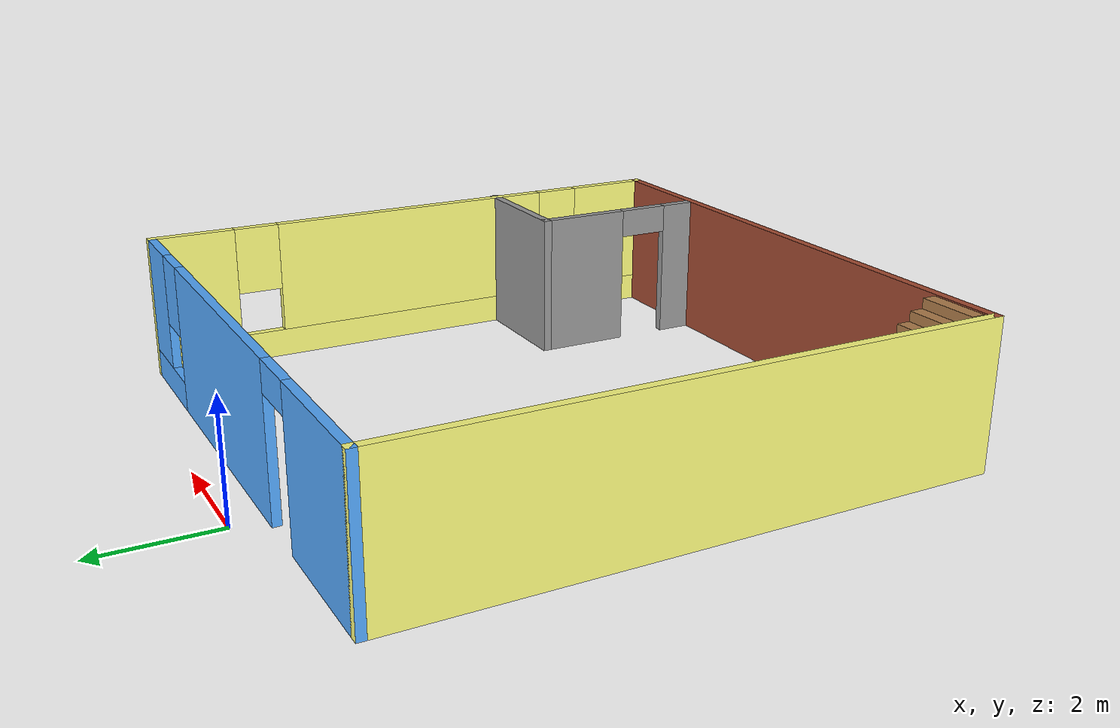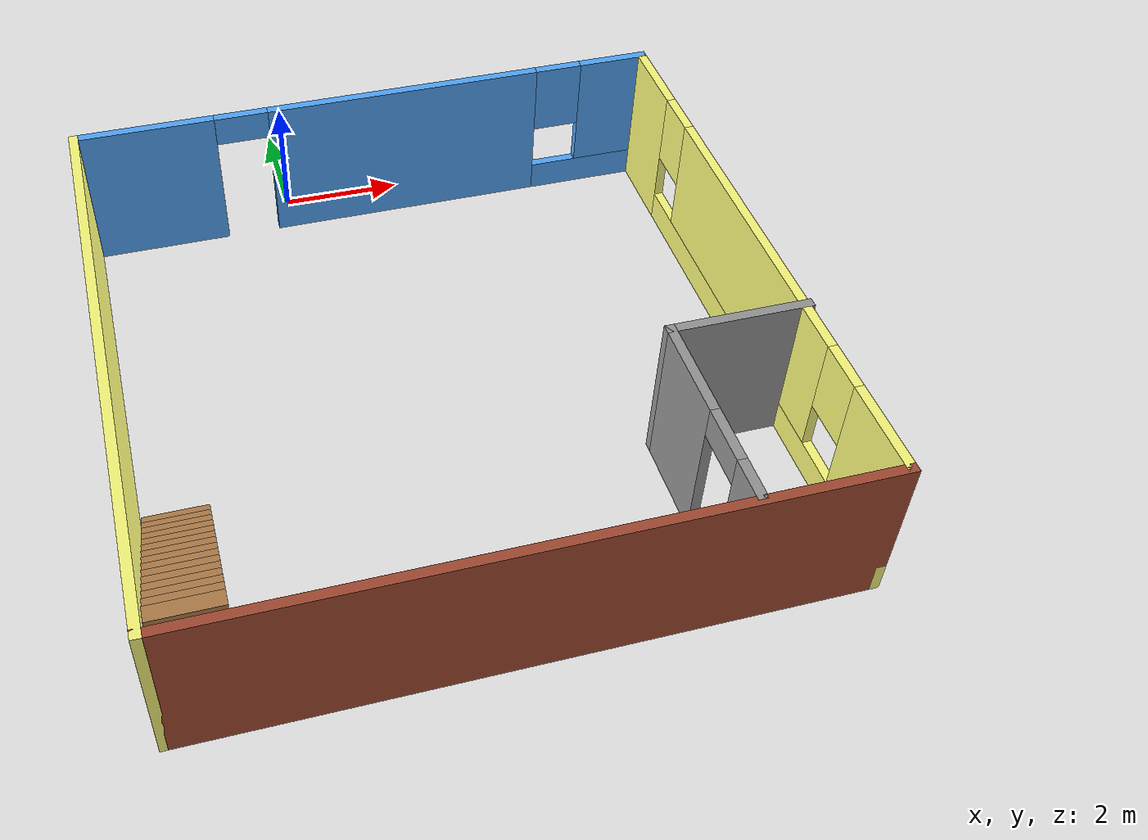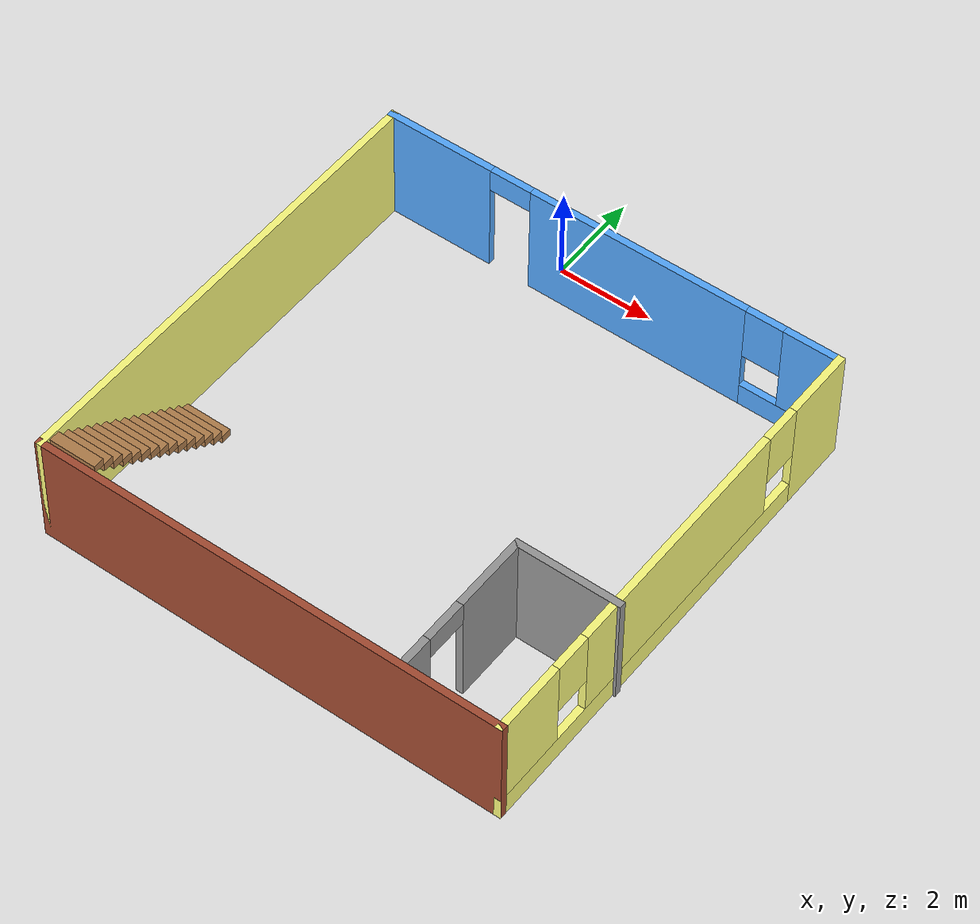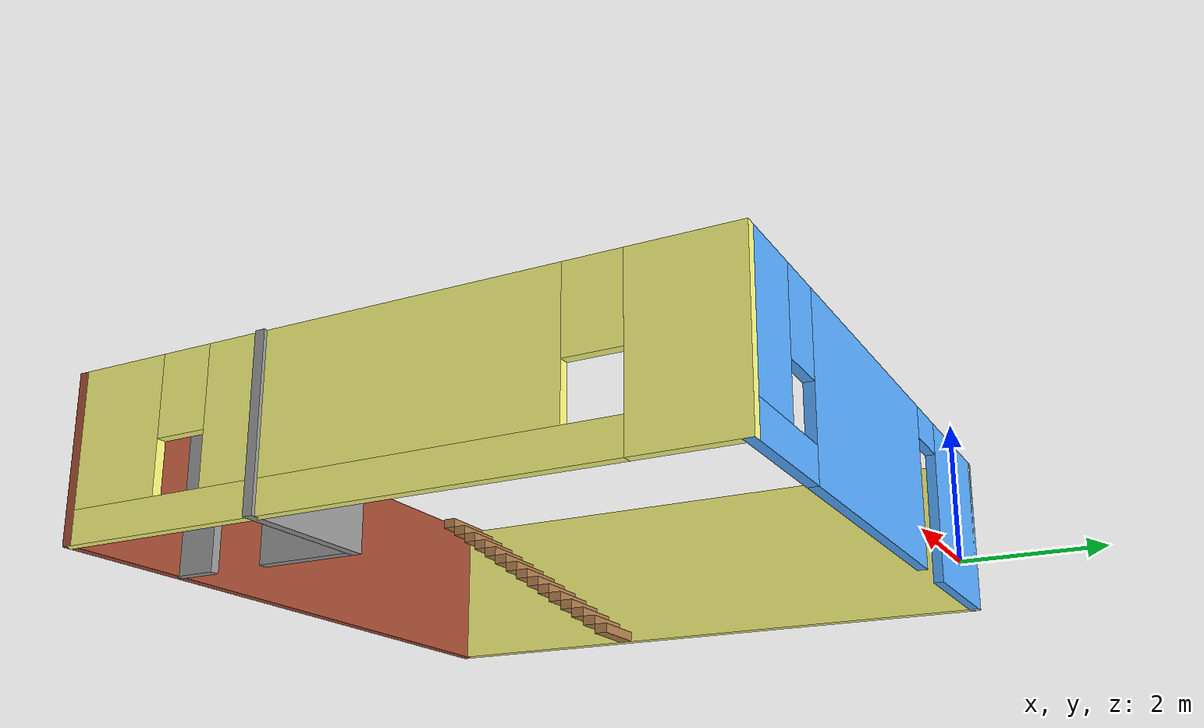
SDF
<?xml version='1.0'?>
<sdf version='1.6'>
  <model name='mybuilding'>
    <pose frame=''>1.48255 -5.535 0 0 -0 0</pose>
    <link name='Stairs_0'>
      <visual name='Stairs_0_Visual_0'>
        <pose frame=''>-4.35223 -1.41016 0.083333 0 -0 0</pose>
        <geometry>
          <box>
            <size>1 0.233333 0.166667</size>
          </box>
        </geometry>
        <material>
          <script>
            <uri>file://media/materials/scripts/gazebo.material</uri>
            <name>Gazebo/Wood</name>
          </script>
          <ambient>1 1 1 1</ambient>
        </material>
      </visual>
      <collision name='Stairs_0_Collision_0'>
        <geometry>
          <box>
            <size>1 0.233333 0.166667</size>
          </box>
        </geometry>
        <pose frame=''>-4.35223 -1.41016 0.083333 0 -0 0</pose>
      </collision>
      <visual name='Stairs_0_Visual_1'>
        <pose frame=''>-4.35223 -1.64349 0.25 0 -0 0</pose>
        <geometry>
          <box>
            <size>1 0.233333 0.166667</size>
          </box>
        </geometry>
        <material>
          <script>
            <uri>file://media/materials/scripts/gazebo.material</uri>
            <name>Gazebo/Wood</name>
          </script>
          <ambient>1 1 1 1</ambient>
        </material>
      </visual>
      <collision name='Stairs_0_Collision_1'>
        <geometry>
          <box>
            <size>1 0.233333 0.166667</size>
          </box>
        </geometry>
        <pose frame=''>-4.35223 -1.64349 0.25 0 -0 0</pose>
      </collision>
      <visual name='Stairs_0_Visual_2'>
        <pose frame=''>-4.35223 -1.87683 0.416667 0 -0 0</pose>
        <geometry>
          <box>
            <size>1 0.233333 0.166667</size>
          </box>
        </geometry>
        <material>
          <script>
            <uri>file://media/materials/scripts/gazebo.material</uri>
            <name>Gazebo/Wood</name>
          </script>
          <ambient>1 1 1 1</ambient>
        </material>
      </visual>
      <collision name='Stairs_0_Collision_2'>
        <geometry>
          <box>
            <size>1 0.233333 0.166667</size>
          </box>
        </geometry>
        <pose frame=''>-4.35223 -1.87683 0.416667 0 -0 0</pose>
      </collision>
      <visual name='Stairs_0_Visual_3'>
        <pose frame=''>-4.35223 -2.11016 0.583333 0 -0 0</pose>
        <geometry>
          <box>
            <size>1 0.233333 0.166667</size>
          </box>
        </geometry>
        <material>
          <script>
            <uri>file://media/materials/scripts/gazebo.material</uri>
            <name>Gazebo/Wood</name>
          </script>
          <ambient>1 1 1 1</ambient>
        </material>
      </visual>
      <collision name='Stairs_0_Collision_3'>
        <geometry>
          <box>
            <size>1 0.233333 0.166667</size>
          </box>
        </geometry>
        <pose frame=''>-4.35223 -2.11016 0.583333 0 -0 0</pose>
      </collision>
      <visual name='Stairs_0_Visual_4'>
        <pose frame=''>-4.35223 -2.34349 0.75 0 -0 0</pose>
        <geometry>
          <box>
            <size>1 0.233333 0.166667</size>
          </box>
        </geometry>
        <material>
          <script>
            <uri>file://media/materials/scripts/gazebo.material</uri>
            <name>Gazebo/Wood</name>
          </script>
          <ambient>1 1 1 1</ambient>
        </material>
      </visual>
      <collision name='Stairs_0_Collision_4'>
        <geometry>
          <box>
            <size>1 0.233333 0.166667</size>
          </box>
        </geometry>
        <pose frame=''>-4.35223 -2.34349 0.75 0 -0 0</pose>
      </collision>
      <visual name='Stairs_0_Visual_5'>
        <pose frame=''>-4.35223 -2.57683 0.916667 0 -0 0</pose>
        <geometry>
          <box>
            <size>1 0.233333 0.166667</size>
          </box>
        </geometry>
        <material>
          <script>
            <uri>file://media/materials/scripts/gazebo.material</uri>
            <name>Gazebo/Wood</name>
          </script>
          <ambient>1 1 1 1</ambient>
        </material>
      </visual>
      <collision name='Stairs_0_Collision_5'>
        <geometry>
          <box>
            <size>1 0.233333 0.166667</size>
          </box>
        </geometry>
        <pose frame=''>-4.35223 -2.57683 0.916667 0 -0 0</pose>
      </collision>
      <visual name='Stairs_0_Visual_6'>
        <pose frame=''>-4.35223 -2.81016 1.08333 0 -0 0</pose>
        <geometry>
          <box>
            <size>1 0.233333 0.166667</size>
          </box>
        </geometry>
        <material>
          <script>
            <uri>file://media/materials/scripts/gazebo.material</uri>
            <name>Gazebo/Wood</name>
          </script>
          <ambient>1 1 1 1</ambient>
        </material>
      </visual>
      <collision name='Stairs_0_Collision_6'>
        <geometry>
          <box>
            <size>1 0.233333 0.166667</size>
          </box>
        </geometry>
        <pose frame=''>-4.35223 -2.81016 1.08333 0 -0 0</pose>
      </collision>
      <visual name='Stairs_0_Visual_7'>
        <pose frame=''>-4.35223 -3.04349 1.25 0 -0 0</pose>
        <geometry>
          <box>
            <size>1 0.233333 0.166667</size>
          </box>
        </geometry>
        <material>
          <script>
            <uri>file://media/materials/scripts/gazebo.material</uri>
            <name>Gazebo/Wood</name>
          </script>
          <ambient>1 1 1 1</ambient>
        </material>
      </visual>
      <collision name='Stairs_0_Collision_7'>
        <geometry>
          <box>
            <size>1 0.233333 0.166667</size>
          </box>
        </geometry>
        <pose frame=''>-4.35223 -3.04349 1.25 0 -0 0</pose>
      </collision>
      <visual name='Stairs_0_Visual_8'>
        <pose frame=''>-4.35223 -3.27683 1.41667 0 -0 0</pose>
        <geometry>
          <box>
            <size>1 0.233333 0.166667</size>
          </box>
        </geometry>
        <material>
          <script>
            <uri>file://media/materials/scripts/gazebo.material</uri>
            <name>Gazebo/Wood</name>
          </script>
          <ambient>1 1 1 1</ambient>
        </material>
      </visual>
      <collision name='Stairs_0_Collision_8'>
        <geometry>
          <box>
            <size>1 0.233333 0.166667</size>
          </box>
        </geometry>
        <pose frame=''>-4.35223 -3.27683 1.41667 0 -0 0</pose>
      </collision>
      <visual name='Stairs_0_Visual_9'>
        <pose frame=''>-4.35223 -3.51016 1.58333 0 -0 0</pose>
        <geometry>
          <box>
            <size>1 0.233333 0.166667</size>
          </box>
        </geometry>
        <material>
          <script>
            <uri>file://media/materials/scripts/gazebo.material</uri>
            <name>Gazebo/Wood</name>
          </script>
          <ambient>1 1 1 1</ambient>
        </material>
      </visual>
      <collision name='Stairs_0_Collision_9'>
        <geometry>
          <box>
            <size>1 0.233333 0.166667</size>
          </box>
        </geometry>
        <pose frame=''>-4.35223 -3.51016 1.58333 0 -0 0</pose>
      </collision>
      <visual name='Stairs_0_Visual_10'>
        <pose frame=''>-4.35223 -3.74349 1.75 0 -0 0</pose>
        <geometry>
          <box>
            <size>1 0.233333 0.166667</size>
          </box>
        </geometry>
        <material>
          <script>
            <uri>file://media/materials/scripts/gazebo.material</uri>
            <name>Gazebo/Wood</name>
          </script>
          <ambient>1 1 1 1</ambient>
        </material>
      </visual>
      <collision name='Stairs_0_Collision_10'>
        <geometry>
          <box>
            <size>1 0.233333 0.166667</size>
          </box>
        </geometry>
        <pose frame=''>-4.35223 -3.74349 1.75 0 -0 0</pose>
      </collision>
      <visual name='Stairs_0_Visual_11'>
        <pose frame=''>-4.35223 -3.97683 1.91667 0 -0 0</pose>
        <geometry>
          <box>
            <size>1 0.233333 0.166667</size>
          </box>
        </geometry>
        <material>
          <script>
            <uri>file://media/materials/scripts/gazebo.material</uri>
            <name>Gazebo/Wood</name>
          </script>
          <ambient>1 1 1 1</ambient>
        </material>
      </visual>
      <collision name='Stairs_0_Collision_11'>
        <geometry>
          <box>
            <size>1 0.233333 0.166667</size>
          </box>
        </geometry>
        <pose frame=''>-4.35223 -3.97683 1.91667 0 -0 0</pose>
      </collision>
      <visual name='Stairs_0_Visual_12'>
        <pose frame=''>-4.35223 -4.21016 2.08333 0 -0 0</pose>
        <geometry>
          <box>
            <size>1 0.233333 0.166667</size>
          </box>
        </geometry>
        <material>
          <script>
            <uri>file://media/materials/scripts/gazebo.material</uri>
            <name>Gazebo/Wood</name>
          </script>
          <ambient>1 1 1 1</ambient>
        </material>
      </visual>
      <collision name='Stairs_0_Collision_12'>
        <geometry>
          <box>
            <size>1 0.233333 0.166667</size>
          </box>
        </geometry>
        <pose frame=''>-4.35223 -4.21016 2.08333 0 -0 0</pose>
      </collision>
      <visual name='Stairs_0_Visual_13'>
        <pose frame=''>-4.35223 -4.44349 2.25 0 -0 0</pose>
        <geometry>
          <box>
            <size>1 0.233333 0.166667</size>
          </box>
        </geometry>
        <material>
          <script>
            <uri>file://media/materials/scripts/gazebo.material</uri>
            <name>Gazebo/Wood</name>
          </script>
          <ambient>1 1 1 1</ambient>
        </material>
      </visual>
      <collision name='Stairs_0_Collision_13'>
        <geometry>
          <box>
            <size>1 0.233333 0.166667</size>
          </box>
        </geometry>
        <pose frame=''>-4.35223 -4.44349 2.25 0 -0 0</pose>
      </collision>
      <visual name='Stairs_0_Visual_14'>
        <pose frame=''>-4.35223 -4.67683 2.41667 0 -0 0</pose>
        <geometry>
          <box>
            <size>1 0.233333 0.166667</size>
          </box>
        </geometry>
        <material>
          <script>
            <uri>file://media/materials/scripts/gazebo.material</uri>
            <name>Gazebo/Wood</name>
          </script>
          <ambient>1 1 1 1</ambient>
        </material>
      </visual>
      <collision name='Stairs_0_Collision_14'>
        <geometry>
          <box>
            <size>1 0.233333 0.166667</size>
          </box>
        </geometry>
        <pose frame=''>-4.35223 -4.67683 2.41667 0 -0 0</pose>
      </collision>
    </link>
    <link name='Wall_0'>
      <collision name='Wall_0_Collision'>
        <geometry>
          <box>
            <size>10 0.15 2.5</size>
          </box>
        </geometry>
        <pose frame=''>0 0 1.25 0 -0 0</pose>
      </collision>
      <visual name='Wall_0_Visual'>
        <pose frame=''>0 0 1.25 0 -0 0</pose>
        <geometry>
          <box>
            <size>10 0.15 2.5</size>
          </box>
        </geometry>
        <material>
          <script>
            <uri>file://media/materials/scripts/gazebo.material</uri>
            <name>Gazebo/Grey</name>
          </script>
          <ambient>1 1 0.498039 1</ambient>
        </material>
      </visual>
      <pose frame=''>-4.95255 0 0 0 0 -1.5708</pose>
    </link>
    <link name='Wall_2'>
      <pose frame=''>-0.027554 4.925 0 0 -0 0</pose>
      <visual name='Wall_2_Visual_0'>
        <pose frame=''>-3.81306 0 1.25 0 -0 0</pose>
        <geometry>
          <box>
            <size>2.37388 0.15 2.5</size>
          </box>
        </geometry>
        <material>
          <script>
            <uri>file://media/materials/scripts/gazebo.material</uri>
            <name>Gazebo/Grey</name>
          </script>
          <ambient>0.333333 0.666667 1 1</ambient>
        </material>
      </visual>
      <collision name='Wall_2_Collision_0'>
        <geometry>
          <box>
            <size>2.37388 0.15 2.5</size>
          </box>
        </geometry>
        <pose frame=''>-3.81306 0 1.25 0 -0 0</pose>
      </collision>
      <visual name='Wall_2_Visual_1'>
        <pose frame=''>0.629801 0 1.25 0 -0 0</pose>
        <geometry>
          <box>
            <size>4.71184 0.15 2.5</size>
          </box>
        </geometry>
        <material>
          <script>
            <uri>file://media/materials/scripts/gazebo.material</uri>
            <name>Gazebo/Grey</name>
          </script>
          <ambient>0.333333 0.666667 1 1</ambient>
        </material>
      </visual>
      <collision name='Wall_2_Collision_1'>
        <geometry>
          <box>
            <size>4.71184 0.15 2.5</size>
          </box>
        </geometry>
        <pose frame=''>0.629801 0 1.25 0 -0 0</pose>
      </collision>
      <visual name='Wall_2_Visual_2'>
        <pose frame=''>3.99286 0 0.25 0 -0 0</pose>
        <geometry>
          <box>
            <size>2.01428 0.15 0.5</size>
          </box>
        </geometry>
        <material>
          <script>
            <uri>file://media/materials/scripts/gazebo.material</uri>
            <name>Gazebo/Grey</name>
          </script>
          <ambient>0.333333 0.666667 1 1</ambient>
        </material>
      </visual>
      <collision name='Wall_2_Collision_2'>
        <geometry>
          <box>
            <size>2.01428 0.15 0.5</size>
          </box>
        </geometry>
        <pose frame=''>3.99286 0 0.25 0 -0 0</pose>
      </collision>
      <visual name='Wall_2_Visual_3'>
        <pose frame=''>4.39286 0 1.5 0 -0 0</pose>
        <geometry>
          <box>
            <size>1.21428 0.15 2</size>
          </box>
        </geometry>
        <material>
          <script>
            <uri>file://media/materials/scripts/gazebo.material</uri>
            <name>Gazebo/Grey</name>
          </script>
          <ambient>0.333333 0.666667 1 1</ambient>
        </material>
      </visual>
      <collision name='Wall_2_Collision_3'>
        <geometry>
          <box>
            <size>1.21428 0.15 2</size>
          </box>
        </geometry>
        <pose frame=''>4.39286 0 1.5 0 -0 0</pose>
      </collision>
      <visual name='Wall_2_Visual_4'>
        <pose frame=''>3.38572 0 1.9 0 -0 0</pose>
        <geometry>
          <box>
            <size>0.8 0.15 1.2</size>
          </box>
        </geometry>
        <material>
          <script>
            <uri>file://media/materials/scripts/gazebo.material</uri>
            <name>Gazebo/Grey</name>
          </script>
          <ambient>0.333333 0.666667 1 1</ambient>
        </material>
      </visual>
      <collision name='Wall_2_Collision_4'>
        <geometry>
          <box>
            <size>0.8 0.15 1.2</size>
          </box>
        </geometry>
        <pose frame=''>3.38572 0 1.9 0 -0 0</pose>
      </collision>
      <visual name='Wall_2_Visual_5'>
        <pose frame=''>-2.17612 0 2.25 0 -0 0</pose>
        <geometry>
          <box>
            <size>0.9 0.15 0.5</size>
          </box>
        </geometry>
        <material>
          <script>
            <uri>file://media/materials/scripts/gazebo.material</uri>
            <name>Gazebo/Grey</name>
          </script>
          <ambient>0.333333 0.666667 1 1</ambient>
        </material>
      </visual>
      <collision name='Wall_2_Collision_5'>
        <geometry>
          <box>
            <size>0.9 0.15 0.5</size>
          </box>
        </geometry>
        <pose frame=''>-2.17612 0 2.25 0 -0 0</pose>
      </collision>
    </link>
    <link name='Wall_4'>
      <pose frame=''>4.89745 0 0 0 0 -1.5708</pose>
      <visual name='Wall_4_Visual_0'>
        <pose frame=''>-4.24207 0 1.25 0 -0 0</pose>
        <geometry>
          <box>
            <size>1.51587 0.15 2.5</size>
          </box>
        </geometry>
        <material>
          <script>
            <uri>file://media/materials/scripts/gazebo.material</uri>
            <name>Gazebo/Grey</name>
          </script>
          <ambient>1 1 0.498039 1</ambient>
        </material>
      </visual>
      <collision name='Wall_4_Collision_0'>
        <geometry>
          <box>
            <size>1.51587 0.15 2.5</size>
          </box>
        </geometry>
        <pose frame=''>-4.24207 0 1.25 0 -0 0</pose>
      </collision>
      <visual name='Wall_4_Visual_1'>
        <pose frame=''>0.757932 0 0.25 0 -0 0</pose>
        <geometry>
          <box>
            <size>8.48414 0.15 0.5</size>
          </box>
        </geometry>
        <material>
          <script>
            <uri>file://media/materials/scripts/gazebo.material</uri>
            <name>Gazebo/Grey</name>
          </script>
          <ambient>1 1 0.498039 1</ambient>
        </material>
      </visual>
      <collision name='Wall_4_Collision_1'>
        <geometry>
          <box>
            <size>8.48414 0.15 0.5</size>
          </box>
        </geometry>
        <pose frame=''>0.757932 0 0.25 0 -0 0</pose>
      </collision>
      <visual name='Wall_4_Visual_2'>
        <pose frame=''>-0.025112 0 1.5 0 -0 0</pose>
        <geometry>
          <box>
            <size>5.31805 0.15 2</size>
          </box>
        </geometry>
        <material>
          <script>
            <uri>file://media/materials/scripts/gazebo.material</uri>
            <name>Gazebo/Grey</name>
          </script>
          <ambient>1 1 0.498039 1</ambient>
        </material>
      </visual>
      <collision name='Wall_4_Collision_2'>
        <geometry>
          <box>
            <size>5.31805 0.15 2</size>
          </box>
        </geometry>
        <pose frame=''>-0.025112 0 1.5 0 -0 0</pose>
      </collision>
      <visual name='Wall_4_Visual_3'>
        <pose frame=''>4.21695 0 1.5 0 -0 0</pose>
        <geometry>
          <box>
            <size>1.56609 0.15 2</size>
          </box>
        </geometry>
        <material>
          <script>
            <uri>file://media/materials/scripts/gazebo.material</uri>
            <name>Gazebo/Grey</name>
          </script>
          <ambient>1 1 0.498039 1</ambient>
        </material>
      </visual>
      <collision name='Wall_4_Collision_3'>
        <geometry>
          <box>
            <size>1.56609 0.15 2</size>
          </box>
        </geometry>
        <pose frame=''>4.21695 0 1.5 0 -0 0</pose>
      </collision>
      <visual name='Wall_4_Visual_4'>
        <pose frame=''>-3.08413 0 1.9 0 -0 0</pose>
        <geometry>
          <box>
            <size>0.8 0.15 1.2</size>
          </box>
        </geometry>
        <material>
          <script>
            <uri>file://media/materials/scripts/gazebo.material</uri>
            <name>Gazebo/Grey</name>
          </script>
          <ambient>1 1 0.498039 1</ambient>
        </material>
      </visual>
      <collision name='Wall_4_Collision_4'>
        <geometry>
          <box>
            <size>0.8 0.15 1.2</size>
          </box>
        </geometry>
        <pose frame=''>-3.08413 0 1.9 0 -0 0</pose>
      </collision>
      <visual name='Wall_4_Visual_5'>
        <pose frame=''>3.03391 0 1.9 0 -0 0</pose>
        <geometry>
          <box>
            <size>0.8 0.15 1.2</size>
          </box>
        </geometry>
        <material>
          <script>
            <uri>file://media/materials/scripts/gazebo.material</uri>
            <name>Gazebo/Grey</name>
          </script>
          <ambient>1 1 0.498039 1</ambient>
        </material>
      </visual>
      <collision name='Wall_4_Collision_5'>
        <geometry>
          <box>
            <size>0.8 0.15 1.2</size>
          </box>
        </geometry>
        <pose frame=''>3.03391 0 1.9 0 -0 0</pose>
      </collision>
    </link>
    <link name='Wall_6'>
      <collision name='Wall_6_Collision'>
        <geometry>
          <box>
            <size>10 0.15 2.5</size>
          </box>
        </geometry>
        <pose frame=''>0 0 1.25 0 -0 0</pose>
      </collision>
      <visual name='Wall_6_Visual'>
        <pose frame=''>0 0 1.25 0 -0 0</pose>
        <geometry>
          <box>
            <size>10 0.15 2.5</size>
          </box>
        </geometry>
        <material>
          <script>
            <uri>file://media/materials/scripts/gazebo.material</uri>
            <name>Gazebo/Bricks</name>
          </script>
          <ambient>1 1 1 1</ambient>
        </material>
      </visual>
      <pose frame=''>-0.027554 -4.925 0 0 -0 0</pose>
    </link>
    <link name='Wall_8'>
      <collision name='Wall_8_Collision'>
        <geometry>
          <box>
            <size>2.25 0.15 2.5</size>
          </box>
        </geometry>
        <pose frame=''>0 0 1.25 0 -0 0</pose>
      </collision>
      <visual name='Wall_8_Visual'>
        <pose frame=''>0 0 1.25 0 -0 0</pose>
        <geometry>
          <box>
            <size>2.25 0.15 2.5</size>
          </box>
        </geometry>
        <material>
          <script>
            <uri>file://media/materials/scripts/gazebo.material</uri>
            <name>Gazebo/Grey</name>
          </script>
          <ambient>1 1 1 1</ambient>
        </material>
      </visual>
      <pose frame=''>3.90255 -1.74082 0 0 -0 3.14159</pose>
    </link>
    <link name='Wall_9'>
      <pose frame=''>2.85256 -3.29082 0 0 0 -1.5708</pose>
      <visual name='Wall_9_Visual_0'>
        <pose frame=''>-0.788974 0 1.25 0 -0 0</pose>
        <geometry>
          <box>
            <size>1.67205 0.15 2.5</size>
          </box>
        </geometry>
        <material>
          <script>
            <uri>file://media/materials/scripts/gazebo.material</uri>
            <name>Gazebo/Grey</name>
          </script>
          <ambient>1 1 1 1</ambient>
        </material>
      </visual>
      <collision name='Wall_9_Collision_0'>
        <geometry>
          <box>
            <size>1.67205 0.15 2.5</size>
          </box>
        </geometry>
        <pose frame=''>-0.788974 0 1.25 0 -0 0</pose>
      </collision>
      <visual name='Wall_9_Visual_1'>
        <pose frame=''>1.28603 0 1.25 0 -0 0</pose>
        <geometry>
          <box>
            <size>0.677948 0.15 2.5</size>
          </box>
        </geometry>
        <material>
          <script>
            <uri>file://media/materials/scripts/gazebo.material</uri>
            <name>Gazebo/Grey</name>
          </script>
          <ambient>1 1 1 1</ambient>
        </material>
      </visual>
      <collision name='Wall_9_Collision_1'>
        <geometry>
          <box>
            <size>0.677948 0.15 2.5</size>
          </box>
        </geometry>
        <pose frame=''>1.28603 0 1.25 0 -0 0</pose>
      </collision>
      <visual name='Wall_9_Visual_2'>
        <pose frame=''>0.497052 0 2.25 0 -0 0</pose>
        <geometry>
          <box>
            <size>0.9 0.15 0.5</size>
          </box>
        </geometry>
        <material>
          <script>
            <uri>file://media/materials/scripts/gazebo.material</uri>
            <name>Gazebo/Grey</name>
          </script>
          <ambient>1 1 1 1</ambient>
        </material>
      </visual>
      <collision name='Wall_9_Collision_2'>
        <geometry>
          <box>
            <size>0.9 0.15 0.5</size>
          </box>
        </geometry>
        <pose frame=''>0.497052 0 2.25 0 -0 0</pose>
      </collision>
    </link>
    <static>1</static>
  </model>
</sdf>
